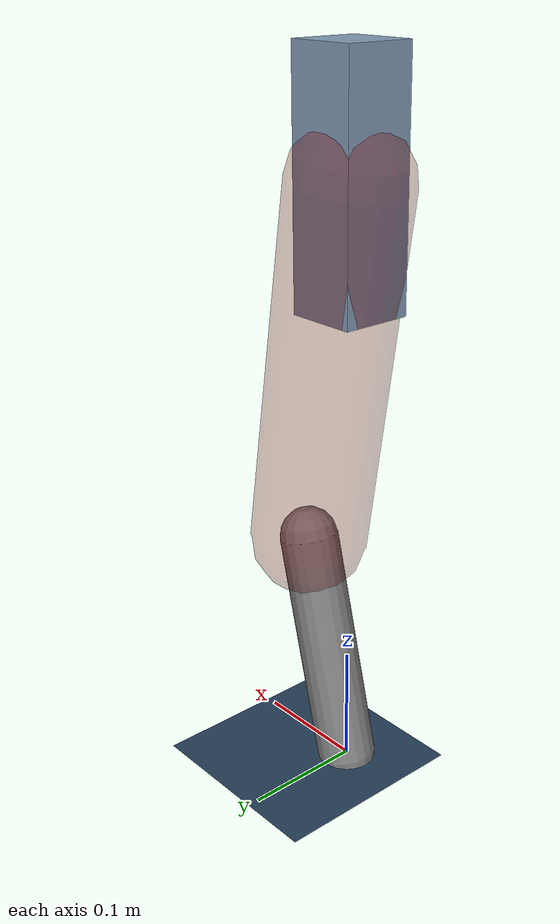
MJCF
<mujoco model="Hopper2D">
	<compiler inertiafromgeom="true" angle="radian" />
	<option timestep="0.001" integrator="implicit" cone="elliptic" solver="Newton" tolerance="1e-10" />

	<default>
		<geom contype="1" conaffinity="1" condim="3" friction="2 0.005 0.0001" solref="0.005 1" />
		<joint limited="true" damping="0.1" />
	</default>

	<asset>
		<texture name="skybox" type="skybox" builtin="gradient" rgb1=".4 .6 .8" rgb2="0 0 0" width="800" height="800" />
		<texture name="grid" type="2d" builtin="checker" rgb1=".1 .2 .3" rgb2=".2 .3 .4" width="300" height="300" mark="edge" markrgb=".2 .3 .4" />
		<material name="ground" texture="grid" texrepeat="1 1" texuniform="true" reflectance="0.1" />
		<material name="leg" rgba="0.5 0.6 0.7 1" />
	</asset>

	<worldbody>

		<geom name="floor" type="plane" size="5 5 0.25" material="ground" />

		<light directional="false" diffuse="0.8 0.8 0.8" specular="0.3 0.3 0.3" pos="0 0 2" dir="0 0 -1" />
		<light mode="targetbodycom" target="base" directional="false" diffuse="0.8 0.8 0.8" specular="0.3 0.3 0.3" pos="0 0 2" dir="0 0 -1" />

		<camera name="fixed" pos="0 -2 1" xyaxes="1 0 0 0 0 1" />
		<camera name="tracking" mode="trackcom" pos="0 -3 1" />

		<body name="root" pos="0 0 0.5011832580172395">
			<joint name="slide_x" type="slide" axis="1 0 0" range="-100 100" />
			<joint name="slide_z" type="slide" axis="0 0 1" range="0 10" />

			<body name="base" pos="0 0 0">
				<geom name="torso" type="box" size="0.03 0.03 0.1" mass="2.406" material="leg" />

				<body name="link1" pos="0 0 0" euler="0 1.4109810130395828 0">
					<joint type="hinge" axis="0 -1 0" pos="0 0 0" name="hinge1" limited="true" range="-3.14 3.14" stiffness="0" damping="0.1" />
					<geom name="thigh" type="capsule" fromto="0 0 0 0.3088982076256065 0 0" size="0.05" rgba="0.5 0 0 0.3" mass="1.0129149813516982" />

					<body name="link2" pos="0.3088982076256065 0 0" euler="0 0.4052804176498273 0">
						<joint type="hinge" axis="0 -1 0" pos="0 0 0" name="hinge2" limited="true" range="-3.14 3.14" stiffness="0" damping="0.1" />
						<geom name="shank" type="capsule" fromto="0 0 0 0.20228505039163303 0 0" size="0.025" mass="0.40282804031330643" />

					</body>
				</body>
			</body>
		</body>
	</worldbody>

	<actuator>
		<motor name="torque1" joint="hinge1" ctrlrange="-73.466553062558 73.466553062558" ctrllimited="true" gear="1" />
		<motor name="torque2" joint="hinge2" ctrlrange="-92.18237188563828 92.18237188563828" ctrllimited="true" gear="1" />
	</actuator>
</mujoco>
